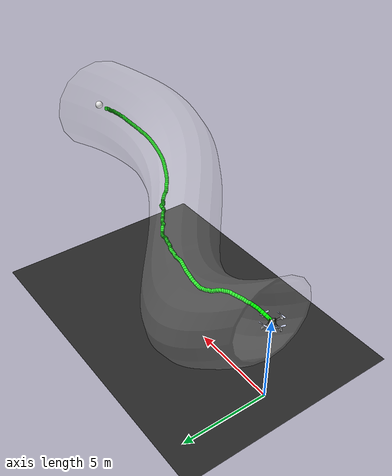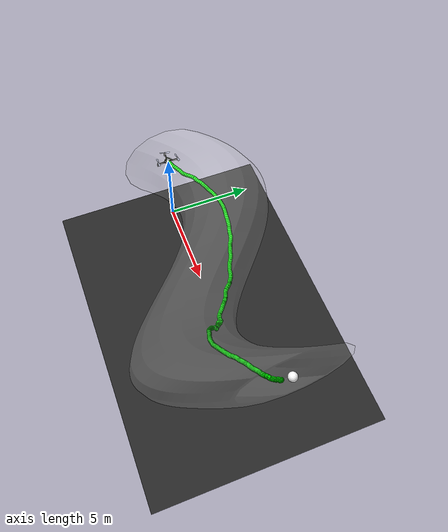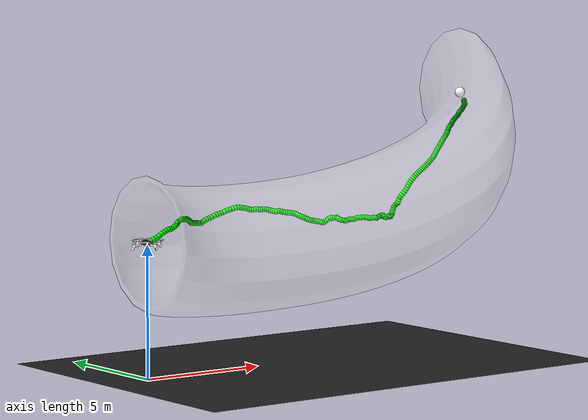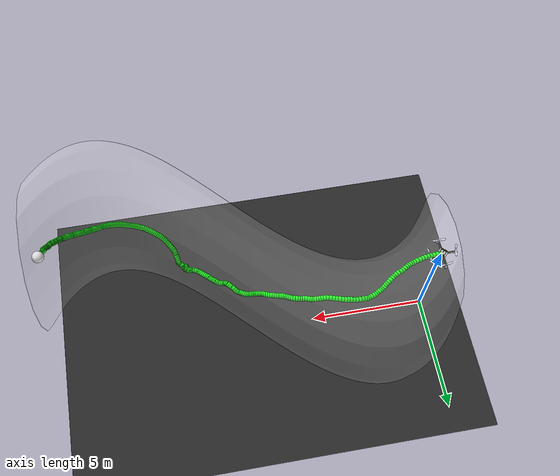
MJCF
<mujoco model="CF2 scene">
  <include file="cf2.xml" />

  <statistic center="0 0 0.1" extent="0.2" meansize=".05" />

  <visual>

    <rgba haze="0.15 0.25 0.35 0" />
    <global azimuth="-20" elevation="-20" ellipsoidinertia="true" />
    <map zfar="1000" />
  </visual>

  <asset>
    <mesh name="tunnel" file="tube_thick.obj" scale="1.0 1.0 1.0" />
    <texture type="skybox" builtin="gradient" rgb1="0.3 0.5 0.7" rgb2="0 0 0" width="512" height="3072" />

    <texture type="2d" name="groundplane" builtin="checker" mark="edge" rgb1="0.1 0.1 0.1" rgb2="0.2 0.2 0.2" markrgb="0.8 0.8 0.8" width="300" height="300" />

    <material name="groundplane" texture="groundplane" texuniform="true" texrepeat="5 5" reflectance="0.0" />
  </asset>

  <worldbody>
    <light diffuse="1 1 1" ambient="1 1 1" pos="0 0 100" dir="0 0 -1" directional="false" castshadow="false" />

    <geom name="floor" size="0 0 0.05" type="plane" material="groundplane" />
    <site name="x_axis" size="0.005" type="cylinder" fromto="0 0 0 1 0 0" rgba="1 0 0 1" />
    <site name="y_axis" size="0.005" type="cylinder" fromto="0 0 0 0 1 0" rgba="0 1 0 1" />
    <site name="z_axis" size="0.005" type="cylinder" fromto="0 0 0 0 0 1" rgba="0 0 1 1" />

    <site name="target" size="0.2" type="sphere" pos="15 0 10" rgba="1 1 1 1" />

    <camera name="cam_aux" pos="-3.429 -18.876 13.649" xyaxes="0.874 -0.486 -0.000 0.179 0.321 0.930" />
    <camera name="cam_traj_1" pos="-7.863 -0.826 23.122" xyaxes="0.020 -1.000 0.000 0.737 0.014 0.676" />
    <camera name="cam_traj_2" pos="7.041 -14.560 20.718" xyaxes="1.000 -0.031 -0.000 0.021 0.691 0.722" />
    <camera name="cam_traj_3" pos="-11.538 -0.602 8.690" xyaxes="0.046 -0.999 -0.000 0.161 0.007 0.987" />

    <body name="tunnel" pos="0.0 0.0 0.0" quat="1 0 0 0">
         <geom name="tunnel" type="mesh" mesh="tunnel" pos="-0.0 0.0 0.029" quat="1 0 0 0" rgba="1 1 1 0.05" />
    </body>

  <body name="trajectory_0" pos="0 0 0"><geom type="capsule" fromto="0.0012853595546936593 0.00047027934031070723 5.013283614304885 0.014320140048435539 0.0050479653705119655 5.031109401533253" size="0.1" rgba="0 1 0.0 1" /><geom type="capsule" fromto="0.014320140048435539 0.0050479653705119655 5.031109401533253 0.07044156455876667 0.019501336843949946 5.0655241527247155" size="0.1" rgba="0 1 0.0 1" /><geom type="capsule" fromto="0.07044156455876667 0.019501336843949946 5.0655241527247155 0.18905273629593777 0.043307146330075916 5.131095809090465" size="0.1" rgba="0 1 0.0 1" /><geom type="capsule" fromto="0.18905273629593777 0.043307146330075916 5.131095809090465 0.3324227043228154 0.06920457783752437 5.181594380862981" size="0.1" rgba="0 1 0.0 1" /><geom type="capsule" fromto="0.3324227043228154 0.06920457783752437 5.181594380862981 0.47441368721917954 0.09621750043521152 5.212262039523513" size="0.1" rgba="0 1 0.0 1" /><geom type="capsule" fromto="0.47441368721917954 0.09621750043521152 5.212262039523513 0.6234043451026282 0.13208580829039573 5.272291521315724" size="0.1" rgba="0 1 0.0 1" /><geom type="capsule" fromto="0.6234043451026282 0.13208580829039573 5.272291521315724 0.7649198268359869 0.17480595422133702 5.340476582608986" size="0.1" rgba="0 1 0.0 1" /><geom type="capsule" fromto="0.7649198268359869 0.17480595422133702 5.340476582608986 0.88765346686393 0.21682683458195892 5.3759221204298715" size="0.1" rgba="0 1 0.0 1" /><geom type="capsule" fromto="0.88765346686393 0.21682683458195892 5.3759221204298715 1.0145313326666103 0.26136879443507605 5.410701777998895" size="0.1" rgba="0 1 0.0 1" /><geom type="capsule" fromto="1.0145313326666103 0.26136879443507605 5.410701777998895 1.1489817576778785 0.307893260023797 5.449848350718764" size="0.1" rgba="0 1 0.0 1" /><geom type="capsule" fromto="1.1489817576778785 0.307893260023797 5.449848350718764 1.2699959795191598 0.3507298606047964 5.454170608363493" size="0.1" rgba="0 1 0.0 1" /><geom type="capsule" fromto="1.2699959795191598 0.3507298606047964 5.454170608363493 1.3861913397560763 0.3929128574111028 5.460892155032756" size="0.1" rgba="0 1 0.0 1" /><geom type="capsule" fromto="1.3861913397560763 0.3929128574111028 5.460892155032756 1.496504709875158 0.43988680346568854 5.509290303588491" size="0.1" rgba="0 1 0.0 1" /><geom type="capsule" fromto="1.496504709875158 0.43988680346568854 5.509290303588491 1.5863871900158981 0.49076761629786914 5.54265692409006" size="0.1" rgba="0 1 0.0 1" /><geom type="capsule" fromto="1.5863871900158981 0.49076761629786914 5.54265692409006 1.6739154376313652 0.5479120036146577 5.56276242009826" size="0.1" rgba="0 1 0.0 1" /><geom type="capsule" fromto="1.6739154376313652 0.5479120036146577 5.56276242009826 1.7805186417331205 0.6193964239873305 5.621937599389062" size="0.1" rgba="0 1 0.0 1" /><geom type="capsule" fromto="1.7805186417331205 0.6193964239873305 5.621937599389062 1.8824695019959323 0.69046450439656 5.654841771319888" size="0.1" rgba="0 1 0.0 1" /><geom type="capsule" fromto="1.8824695019959323 0.69046450439656 5.654841771319888 1.9891768180557539 0.7549733628861904 5.692622501821689" size="0.1" rgba="0 1 0.0 1" /><geom type="capsule" fromto="1.9891768180557539 0.7549733628861904 5.692622501821689 2.0991953454807293 0.809452806399863 5.72706469846556" size="0.1" rgba="0 1 0.0 1" /><geom type="capsule" fromto="2.0991953454807293 0.809452806399863 5.72706469846556 2.19557072496153 0.8542998385862836 5.7166319539052814" size="0.1" rgba="0 1 0.0 1" /><geom type="capsule" fromto="2.19557072496153 0.8542998385862836 5.7166319539052814 2.284068153373448 0.899142674487456 5.692419570251989" size="0.1" rgba="0 1 0.0 1" /><geom type="capsule" fromto="2.284068153373448 0.899142674487456 5.692419570251989 2.370657348108244 0.9540868594714961 5.690626315442958" size="0.1" rgba="0 1 0.0 1" /><geom type="capsule" fromto="2.370657348108244 0.9540868594714961 5.690626315442958 2.456012154077368 1.0153574630438378 5.697653286327407" size="0.1" rgba="0 1 0.0 1" /><geom type="capsule" fromto="2.456012154077368 1.0153574630438378 5.697653286327407 2.535971271448708 1.0717395450611225 5.67065806088946" size="0.1" rgba="0 1 0.0 1" /><geom type="capsule" fromto="2.535971271448708 1.0717395450611225 5.67065806088946 2.6119982420988785 1.1206358476504363 5.627738629939149" size="0.1" rgba="0 1 0.0 1" /><geom type="capsule" fromto="2.6119982420988785 1.1206358476504363 5.627738629939149 2.6821238170612145 1.1664084100460024 5.599244072378168" size="0.1" rgba="0 1 0.0 1" /><geom type="capsule" fromto="2.6821238170612145 1.1664084100460024 5.599244072378168 2.7446069942895623 1.213303572756715 5.574690287239894" size="0.1" rgba="0 1 0.0 1" /><geom type="capsule" fromto="2.7446069942895623 1.213303572756715 5.574690287239894 2.805426458777354 1.258425111268267 5.530160853954514" size="0.1" rgba="0 1 0.0 1" /><geom type="capsule" fromto="2.805426458777354 1.258425111268267 5.530160853954514 2.875116517463497 1.2989118657855734 5.487732728518108" size="0.1" rgba="0 1 0.0 1" /><geom type="capsule" fromto="2.875116517463497 1.2989118657855734 5.487732728518108 2.960894376224521 1.3373006998252057 5.483002474064678" size="0.1" rgba="0 1 0.0 1" /><geom type="capsule" fromto="2.960894376224521 1.3373006998252057 5.483002474064678 3.0449042755864646 1.37851595250864 5.4745120286261395" size="0.1" rgba="0 1 0.0 1" /><geom type="capsule" fromto="3.0449042755864646 1.37851595250864 5.4745120286261395 3.120082584939899 1.4216801619511124 5.449414533562812" size="0.1" rgba="0 1 0.0 1" /><geom type="capsule" fromto="3.120082584939899 1.4216801619511124 5.449414533562812 3.20341013654604 1.4612441636925664 5.450447531222437" size="0.1" rgba="0 1 0.0 1" /><geom type="capsule" fromto="3.20341013654604 1.4612441636925664 5.450447531222437 3.2947084475276265 1.4936551959511524 5.4492724039547396" size="0.1" rgba="0 1 0.0 1" /><geom type="capsule" fromto="3.2947084475276265 1.4936551959511524 5.4492724039547396 3.3822742405827397 1.5201087095277377 5.423797225708948" size="0.1" rgba="0 1 0.0 1" /><geom type="capsule" fromto="3.3822742405827397 1.5201087095277377 5.423797225708948 3.470784099156863 1.5375055205935335 5.41356299093114" size="0.1" rgba="0 1 0.0 1" /><geom type="capsule" fromto="3.470784099156863 1.5375055205935335 5.41356299093114 3.56814990879444 1.5512085311457642 5.443393186767296" size="0.1" rgba="0 1 0.0 1" /><geom type="capsule" fromto="3.56814990879444 1.5512085311457642 5.443393186767296 3.6775834262647304 1.5691004925615553 5.490088241913491" size="0.1" rgba="0 1 0.0 1" /><geom type="capsule" fromto="3.6775834262647304 1.5691004925615553 5.490088241913491 3.801989317787098 1.5856923280275335 5.542201777159132" size="0.1" rgba="0 1 0.0 1" /><geom type="capsule" fromto="3.801989317787098 1.5856923280275335 5.542201777159132 3.9225162708412125 1.5962026210966214 5.568362147914935" size="0.1" rgba="0 1 0.0 1" /><geom type="capsule" fromto="3.9225162708412125 1.5962026210966214 5.568362147914935 4.044583318094686 1.5955895784529424 5.606591332476915" size="0.1" rgba="0 1 0.0 1" /><geom type="capsule" fromto="4.044583318094686 1.5955895784529424 5.606591332476915 4.163129007900079 1.5879183724630648 5.658157381811024" size="0.1" rgba="0 1 0.0 1" /><geom type="capsule" fromto="4.163129007900079 1.5879183724630648 5.658157381811024 4.271758988233045 1.58176591624074 5.691498841716204" size="0.1" rgba="0 1 0.0 1" /><geom type="capsule" fromto="4.271758988233045 1.58176591624074 5.691498841716204 4.380829664274427 1.5767930701667434 5.716643391147755" size="0.1" rgba="0 1 0.0 1" /><geom type="capsule" fromto="4.380829664274427 1.5767930701667434 5.716643391147755 4.494560082521928 1.565985984624405 5.742263220341499" size="0.1" rgba="0 1 0.0 1" /><geom type="capsule" fromto="4.494560082521928 1.565985984624405 5.742263220341499 4.619213822912443 1.5473306982746111 5.790782277008472" size="0.1" rgba="0 1 0.0 1" /><geom type="capsule" fromto="4.619213822912443 1.5473306982746111 5.790782277008472 4.738611011023173 1.5273387315540075 5.828018673764754" size="0.1" rgba="0 1 0.0 1" /><geom type="capsule" fromto="4.738611011023173 1.5273387315540075 5.828018673764754 4.851270136628162 1.5056965778199667 5.850449418085789" size="0.1" rgba="0 1 0.0 1" /><geom type="capsule" fromto="4.851270136628162 1.5056965778199667 5.850449418085789 4.969541848413545 1.482268208265379 5.888261574270945" size="0.1" rgba="0 1 0.0 1" /><geom type="capsule" fromto="4.969541848413545 1.482268208265379 5.888261574270945 5.0829081081662615 1.461598447121547 5.912937967250372" size="0.1" rgba="0 1 0.0 1" /><geom type="capsule" fromto="5.0829081081662615 1.461598447121547 5.912937967250372 5.186085342463987 1.4461021557684763 5.9152725871975855" size="0.1" rgba="0 1 0.0 1" /><geom type="capsule" fromto="5.186085342463987 1.4461021557684763 5.9152725871975855 5.279478342949308 1.4357856291478943 5.906904547517201" size="0.1" rgba="0 1 0.0 1" /><geom type="capsule" fromto="5.279478342949308 1.4357856291478943 5.906904547517201 5.362744119114053 1.427218686011689 5.885731148842143" size="0.1" rgba="0 1 0.0 1" /><geom type="capsule" fromto="5.362744119114053 1.427218686011689 5.885731148842143 5.446045800653232 1.4177440293034551 5.870681132115739" size="0.1" rgba="0 1 0.0 1" /><geom type="capsule" fromto="5.446045800653232 1.4177440293034551 5.870681132115739 5.5323646622992895 1.4079496941899474 5.857753522480356" size="0.1" rgba="0 1 0.0 1" /><geom type="capsule" fromto="5.5323646622992895 1.4079496941899474 5.857753522480356 5.614782070405464 1.3963112406591327 5.824708961379177" size="0.1" rgba="0 1 0.0 1" /><geom type="capsule" fromto="5.614782070405464 1.3963112406591327 5.824708961379177 5.696491875005756 1.376808627845909 5.799635175745899" size="0.1" rgba="0 1 0.0 1" /><geom type="capsule" fromto="5.696491875005756 1.376808627845909 5.799635175745899 5.781757966387723 1.3484300303531394 5.799161119145286" size="0.1" rgba="0 1 0.0 1" /><geom type="capsule" fromto="5.781757966387723 1.3484300303531394 5.799161119145286 5.873093268552207 1.318396274491166 5.808656809504275" size="0.1" rgba="0 1 0.0 1" /><geom type="capsule" fromto="5.873093268552207 1.318396274491166 5.808656809504275 5.9642642624230096 1.2930149910297328 5.804247668266089" size="0.1" rgba="0 1 0.0 1" /><geom type="capsule" fromto="5.9642642624230096 1.2930149910297328 5.804247668266089 6.052620417322947 1.2756309370170462 5.790775556820336" size="0.1" rgba="0 1 0.0 1" /><geom type="capsule" fromto="6.052620417322947 1.2756309370170462 5.790775556820336 6.140606945463323 1.2624010040256732 5.7861392973188535" size="0.1" rgba="0 1 0.0 1" /><geom type="capsule" fromto="6.140606945463323 1.2624010040256732 5.7861392973188535 6.229532547215699 1.2461091636758315 5.791720625196338" size="0.1" rgba="0 1 0.0 1" /><geom type="capsule" fromto="6.229532547215699 1.2461091636758315 5.791720625196338 6.315795874856431 1.2245306352662069 5.7887029148924" size="0.1" rgba="0 1 0.0 1" /><geom type="capsule" fromto="6.315795874856431 1.2245306352662069 5.7887029148924 6.394386700334637 1.1951616989395575 5.764748525817891" size="0.1" rgba="0 1 0.0 1" /><geom type="capsule" fromto="6.394386700334637 1.1951616989395575 5.764748525817891 6.468185499540562 1.1565288161722624 5.738642869998028" size="0.1" rgba="0 1 0.0 1" /><geom type="capsule" fromto="6.468185499540562 1.1565288161722624 5.738642869998028 6.537366709105285 1.1125837608168043 5.722247315473538" size="0.1" rgba="0 1 0.0 1" /><geom type="capsule" fromto="6.537366709105285 1.1125837608168043 5.722247315473538 6.602445762853487 1.0704577591380553 5.701204291201918" size="0.1" rgba="0 1 0.0 1" /><geom type="capsule" fromto="6.602445762853487 1.0704577591380553 5.701204291201918 6.672901279435501 1.035328606119307 5.693577357736813" size="0.1" rgba="0 1 0.0 1" /><geom type="capsule" fromto="6.672901279435501 1.035328606119307 5.693577357736813 6.743049162329453 1.0113718380963337 5.707833859998446" size="0.1" rgba="0 1 0.0 1" /><geom type="capsule" fromto="6.743049162329453 1.0113718380963337 5.707833859998446 6.802137263746081 0.9939671322073246 5.705083944797465" size="0.1" rgba="0 1 0.0 1" /><geom type="capsule" fromto="6.802137263746081 0.9939671322073246 5.705083944797465 6.859378816504023 0.9755010707516942 5.686566203489542" size="0.1" rgba="0 1 0.0 1" /><geom type="capsule" fromto="6.859378816504023 0.9755010707516942 5.686566203489542 6.924111439992232 0.9523843735810097 5.666618744623862" size="0.1" rgba="0 1 0.0 1" /><geom type="capsule" fromto="6.924111439992232 0.9523843735810097 5.666618744623862 6.998490691722804 0.9259877574097988 5.650974262630583" size="0.1" rgba="0 1 0.0 1" /><geom type="capsule" fromto="6.998490691722804 0.9259877574097988 5.650974262630583 7.077191655934562 0.9000486765660425 5.640646558667137" size="0.1" rgba="0 1 0.0 1" /><geom type="capsule" fromto="7.077191655934562 0.9000486765660425 5.640646558667137 7.156230058276215 0.8746365041832206 5.636503142195299" size="0.1" rgba="0 1 0.0 1" /><geom type="capsule" fromto="7.156230058276215 0.8746365041832206 5.636503142195299 7.233759279485944 0.8484313641309236 5.620707647836825" size="0.1" rgba="0 1 0.0 1" /><geom type="capsule" fromto="7.233759279485944 0.8484313641309236 5.620707647836825 7.308967672074701 0.8177552203705137 5.6002400550741624" size="0.1" rgba="0 1 0.0 1" /><geom type="capsule" fromto="7.308967672074701 0.8177552203705137 5.6002400550741624 7.379265313657744 0.7781111986519614 5.588206228561372" size="0.1" rgba="0 1 0.0 1" /><geom type="capsule" fromto="7.379265313657744 0.7781111986519614 5.588206228561372 7.440364285106929 0.7363381017432487 5.549215169609405" size="0.1" rgba="0 1 0.0 1" /><geom type="capsule" fromto="7.440364285106929 0.7363381017432487 5.549215169609405 7.498065635196446 0.6999212032030055 5.5095927734429" size="0.1" rgba="0 1 0.0 1" /><geom type="capsule" fromto="7.498065635196446 0.6999212032030055 5.5095927734429 7.55664341956195 0.670193672701184 5.481850550214689" size="0.1" rgba="0 1 0.0 1" /><geom type="capsule" fromto="7.55664341956195 0.670193672701184 5.481850550214689 7.616415878000519 0.6478791003377449 5.4543222846224895" size="0.1" rgba="0 1 0.0 1" /><geom type="capsule" fromto="7.616415878000519 0.6478791003377449 5.4543222846224895 7.676579106463314 0.6304967628083307 5.432906892450077" size="0.1" rgba="0 1 0.0 1" /><geom type="capsule" fromto="7.676579106463314 0.6304967628083307 5.432906892450077 7.734381328063129 0.6109344949663152 5.408773166597203" size="0.1" rgba="0 1 0.0 1" /><geom type="capsule" fromto="7.734381328063129 0.6109344949663152 5.408773166597203 7.790544661794439 0.5885054561551705 5.376495069472317" size="0.1" rgba="0 1 0.0 1" /><geom type="capsule" fromto="7.790544661794439 0.5885054561551705 5.376495069472317 7.850345156048979 0.5692751443498798 5.348946323741599" size="0.1" rgba="0 1 0.0 1" /><geom type="capsule" fromto="7.850345156048979 0.5692751443498798 5.348946323741599 7.915130384366121 0.5577862534341884 5.328844901971434" size="0.1" rgba="0 1 0.0 1" /><geom type="capsule" fromto="7.915130384366121 0.5577862534341884 5.328844901971434 7.980323348645969 0.5487797819940239 5.307302073198862" size="0.1" rgba="0 1 0.0 1" /><geom type="capsule" fromto="7.980323348645969 0.5487797819940239 5.307302073198862 8.044749273788982 0.5345895005039615 5.295546109400312" size="0.1" rgba="0 1 0.0 1" /><geom type="capsule" fromto="8.044749273788982 0.5345895005039615 5.295546109400312 8.109992676665586 0.5122421637091074 5.286187774673868" size="0.1" rgba="0 1 0.0 1" /><geom type="capsule" fromto="8.109992676665586 0.5122421637091074 5.286187774673868 8.174264236118264 0.48261037761581105 5.266456213759932" size="0.1" rgba="0 1 0.0 1" /><geom type="capsule" fromto="8.174264236118264 0.48261037761581105 5.266456213759932 8.233673521774064 0.44711070234808603 5.2553972562956766" size="0.1" rgba="0 1 0.0 1" /><geom type="capsule" fromto="8.233673521774064 0.44711070234808603 5.2553972562956766 8.28567168465211 0.4090693332553852 5.248031743431805" size="0.1" rgba="0 1 0.0 1" /><geom type="capsule" fromto="8.28567168465211 0.4090693332553852 5.248031743431805 8.334630143932445 0.37365101491735114 5.225058156529853" size="0.1" rgba="0 1 0.0 1" /><geom type="capsule" fromto="8.334630143932445 0.37365101491735114 5.225058156529853 8.388160454938713 0.344510522402945 5.215526971270021" size="0.1" rgba="0 1 0.0 1" /><geom type="capsule" fromto="8.388160454938713 0.344510522402945 5.215526971270021 8.445426996420078 0.3139420519204106 5.234418653328291" size="0.1" rgba="0 1 0.0 1" /><geom type="capsule" fromto="8.445426996420078 0.3139420519204106 5.234418653328291 8.505780352313792 0.26849517109985366 5.287083339313003" size="0.1" rgba="0 1 0.0 1" /><geom type="capsule" fromto="8.505780352313792 0.26849517109985366 5.287083339313003 8.571009055444698 0.21088911822484885 5.359783714759391" size="0.1" rgba="0 1 0.0 1" /><geom type="capsule" fromto="8.571009055444698 0.21088911822484885 5.359783714759391 8.631635779562975 0.15482938815632258 5.393020057118192" size="0.1" rgba="0 1 0.0 1" /><geom type="capsule" fromto="8.631635779562975 0.15482938815632258 5.393020057118192 8.68277365065277 0.10310375102830459 5.384945591175701" size="0.1" rgba="0 1 0.0 1" /><geom type="capsule" fromto="8.68277365065277 0.10310375102830459 5.384945591175701 8.728738840399513 0.052741182526529026 5.399091776944285" size="0.1" rgba="0 1 0.0 1" /><geom type="capsule" fromto="8.728738840399513 0.052741182526529026 5.399091776944285 8.773550906596862 0.005922928369021682 5.411327771848506" size="0.1" rgba="0 1 0.0 1" /><geom type="capsule" fromto="8.773550906596862 0.005922928369021682 5.411327771848506 8.818449942264591 -0.03434345301716425 5.382544946797536" size="0.1" rgba="0 1 0.0 1" /><geom type="capsule" fromto="8.818449942264591 -0.03434345301716425 5.382544946797536 8.86730421495154 -0.06558192446864468 5.343681081420352" size="0.1" rgba="0 1 0.0 1" /><geom type="capsule" fromto="8.86730421495154 -0.06558192446864468 5.343681081420352 8.918674534426465 -0.08708927749381357 5.317318079188049" size="0.1" rgba="0 1 0.0 1" /><geom type="capsule" fromto="8.918674534426465 -0.08708927749381357 5.317318079188049 8.972167064106806 -0.10506299449518691 5.306807927322927" size="0.1" rgba="0 1 0.0 1" /><geom type="capsule" fromto="8.972167064106806 -0.10506299449518691 5.306807927322927 9.030105713796734 -0.12586646693285822 5.299979275022605" size="0.1" rgba="0 1 0.0 1" /><geom type="capsule" fromto="9.030105713796734 -0.12586646693285822 5.299979275022605 9.087562403290843 -0.15107906520376568 5.281132381173714" size="0.1" rgba="0 1 0.0 1" /><geom type="capsule" fromto="9.087562403290843 -0.15107906520376568 5.281132381173714 9.141801376190966 -0.1809152094599241 5.285600443989492" size="0.1" rgba="0 1 0.0 1" /><geom type="capsule" fromto="9.141801376190966 -0.1809152094599241 5.285600443989492 9.19210301332263 -0.21088552718501985 5.314642422301078" size="0.1" rgba="0 1 0.0 1" /><geom type="capsule" fromto="9.19210301332263 -0.21088552718501985 5.314642422301078 9.238100718220432 -0.2423984919200437 5.334612443486429" size="0.1" rgba="0 1 0.0 1" /><geom type="capsule" fromto="9.238100718220432 -0.2423984919200437 5.334612443486429 9.281433295056724 -0.2778844802746072 5.331822601432883" size="0.1" rgba="0 1 0.0 1" /><geom type="capsule" fromto="9.281433295056724 -0.2778844802746072 5.331822601432883 9.325660239464234 -0.31456651594745644 5.329994840819013" size="0.1" rgba="0 1 0.0 1" /><geom type="capsule" fromto="9.325660239464234 -0.31456651594745644 5.329994840819013 9.37451257714785 -0.35017425578530986 5.339591446131251" size="0.1" rgba="0 1 0.0 1" /><geom type="capsule" fromto="9.37451257714785 -0.35017425578530986 5.339591446131251 9.425886285415984 -0.38746850139389183 5.35971116129518" size="0.1" rgba="0 1 0.0 1" /><geom type="capsule" fromto="9.425886285415984 -0.38746850139389183 5.35971116129518 9.475935856364426 -0.42765019428043205 5.392452675120094" size="0.1" rgba="0 1 0.0 1" /><geom type="capsule" fromto="9.475935856364426 -0.42765019428043205 5.392452675120094 9.524524767017672 -0.46861524237794816 5.3999181666144045" size="0.1" rgba="0 1 0.0 1" /><geom type="capsule" fromto="9.524524767017672 -0.46861524237794816 5.3999181666144045 9.57847688735663 -0.5097862457742307 5.401360747113876" size="0.1" rgba="0 1 0.0 1" /><geom type="capsule" fromto="9.57847688735663 -0.5097862457742307 5.401360747113876 9.636285381009042 -0.5516544958526529 5.409222325704218" size="0.1" rgba="0 1 0.0 1" /><geom type="capsule" fromto="9.636285381009042 -0.5516544958526529 5.409222325704218 9.68764385038216 -0.5965629460297038 5.412313442666814" size="0.1" rgba="0 1 0.0 1" /><geom type="capsule" fromto="9.68764385038216 -0.5965629460297038 5.412313442666814 9.731998720266956 -0.6419819360086944 5.4044975417746155" size="0.1" rgba="0 1 0.0 1" /><geom type="capsule" fromto="9.731998720266956 -0.6419819360086944 5.4044975417746155 9.773671570449633 -0.6845914435669327 5.39156839246748" size="0.1" rgba="0 1 0.0 1" /><geom type="capsule" fromto="9.773671570449633 -0.6845914435669327 5.39156839246748 9.816101691045711 -0.7247806519879423 5.380152018510966" size="0.1" rgba="0 1 0.0 1" /><geom type="capsule" fromto="9.816101691045711 -0.7247806519879423 5.380152018510966 9.862156155503383 -0.7628078152277482 5.372362030841846" size="0.1" rgba="0 1 0.0 1" /><geom type="capsule" fromto="9.862156155503383 -0.7628078152277482 5.372362030841846 9.916425286889766 -0.7948064137044099 5.390893813654234" size="0.1" rgba="0 1 0.0 1" /><geom type="capsule" fromto="9.916425286889766 -0.7948064137044099 5.390893813654234 9.974205646884974 -0.8200819669626674 5.403623158419371" size="0.1" rgba="0 1 0.0 1" /><geom type="capsule" fromto="9.974205646884974 -0.8200819669626674 5.403623158419371 10.028435309421875 -0.8392090071759968 5.389520395699723" size="0.1" rgba="0 1 0.0 1" /><geom type="capsule" fromto="10.028435309421875 -0.8392090071759968 5.389520395699723 10.079888044106411 -0.8492539940378828 5.374279207524094" size="0.1" rgba="0 1 0.0 1" /><geom type="capsule" fromto="10.079888044106411 -0.8492539940378828 5.374279207524094 10.13490163716438 -0.848264637385224 5.398146430249362" size="0.1" rgba="0 1 0.0 1" /><geom type="capsule" fromto="10.13490163716438 -0.848264637385224 5.398146430249362 10.188920567755021 -0.8438953579549102 5.432617687489014" size="0.1" rgba="0 1 0.0 1" /><geom type="capsule" fromto="10.188920567755021 -0.8438953579549102 5.432617687489014 10.233435465469455 -0.847020391686348 5.444953763939986" size="0.1" rgba="0 1 0.0 1" /><geom type="capsule" fromto="10.233435465469455 -0.847020391686348 5.444953763939986 10.27113306076534 -0.8627119708105564 5.462424817155609" size="0.1" rgba="0 1 0.0 1" /><geom type="capsule" fromto="10.27113306076534 -0.8627119708105564 5.462424817155609 10.302875370217626 -0.886108520017998 5.4614018511576985" size="0.1" rgba="0 1 0.0 1" /><geom type="capsule" fromto="10.302875370217626 -0.886108520017998 5.4614018511576985 10.325981703243649 -0.9112948728019018 5.433414290448277" size="0.1" rgba="0 1 0.0 1" /><geom type="capsule" fromto="10.325981703243649 -0.9112948728019018 5.433414290448277 10.33610959294911 -0.9326222000168041 5.428022214457907" size="0.1" rgba="0 1 0.0 1" /><geom type="capsule" fromto="10.33610959294911 -0.9326222000168041 5.428022214457907 10.331978811607037 -0.9467840949045458 5.4407136992879215" size="0.1" rgba="0 1 0.0 1" /><geom type="capsule" fromto="10.331978811607037 -0.9467840949045458 5.4407136992879215 10.318148053727048 -0.9554674071430778 5.459704820867776" size="0.1" rgba="0 1 0.0 1" /><geom type="capsule" fromto="10.318148053727048 -0.9554674071430778 5.459704820867776 10.300508771310868 -0.9627617395322445 5.464765368946335" size="0.1" rgba="0 1 0.0 1" /><geom type="capsule" fromto="10.300508771310868 -0.9627617395322445 5.464765368946335 10.285125581213215 -0.9721836723730317 5.469418673944786" size="0.1" rgba="0 1 0.0 1" /><geom type="capsule" fromto="10.285125581213215 -0.9721836723730317 5.469418673944786 10.279859331268021 -0.9858191245886099 5.484570088238192" size="0.1" rgba="0 1 0.0 1" /><geom type="capsule" fromto="10.279859331268021 -0.9858191245886099 5.484570088238192 10.283688319850542 -1.003030996792487 5.470477952169843" size="0.1" rgba="0 1 0.0 1" /><geom type="capsule" fromto="10.283688319850542 -1.003030996792487 5.470477952169843 10.29554303528042 -1.0202177163960942 5.449721803538948" size="0.1" rgba="0 1 0.0 1" /><geom type="capsule" fromto="10.29554303528042 -1.0202177163960942 5.449721803538948 10.315104219386876 -1.0316920732341097 5.436973715231139" size="0.1" rgba="0 1 0.0 1" /><geom type="capsule" fromto="10.315104219386876 -1.0316920732341097 5.436973715231139 10.342360972145269 -1.0378173459961593 5.417471896067149" size="0.1" rgba="0 1 0.0 1" /><geom type="capsule" fromto="10.342360972145269 -1.0378173459961593 5.417471896067149 10.37443164511636 -1.0440138667100363 5.3964146840502805" size="0.1" rgba="0 1 0.0 1" /><geom type="capsule" fromto="10.37443164511636 -1.0440138667100363 5.3964146840502805 10.405327234880849 -1.055821368143249 5.397246249416648" size="0.1" rgba="0 1 0.0 1" /><geom type="capsule" fromto="10.405327234880849 -1.055821368143249 5.397246249416648 10.433682982093124 -1.082024518388896 5.438348753498598" size="0.1" rgba="0 1 0.0 1" /><geom type="capsule" fromto="10.433682982093124 -1.082024518388896 5.438348753498598 10.459753436429738 -1.117313292387249 5.4572567091605455" size="0.1" rgba="0 1 0.0 1" /><geom type="capsule" fromto="10.459753436429738 -1.117313292387249 5.4572567091605455 10.484399617249094 -1.1509911225282963 5.423758501422473" size="0.1" rgba="0 1 0.0 1" /><geom type="capsule" fromto="10.484399617249094 -1.1509911225282963 5.423758501422473 10.515487158689742 -1.1734599095537577 5.432737299790488" size="0.1" rgba="0 1 0.0 1" /><geom type="capsule" fromto="10.515487158689742 -1.1734599095537577 5.432737299790488 10.548708559872102 -1.1838602082093193 5.478476809336593" size="0.1" rgba="0 1 0.0 1" /><geom type="capsule" fromto="10.548708559872102 -1.1838602082093193 5.478476809336593 10.566457590780027 -1.1914874825221602 5.524774033695753" size="0.1" rgba="0 1 0.0 1" /><geom type="capsule" fromto="10.566457590780027 -1.1914874825221602 5.524774033695753 10.568222924087573 -1.198641348948068 5.567300559603926" size="0.1" rgba="0 1 0.0 1" /><geom type="capsule" fromto="10.568222924087573 -1.198641348948068 5.567300559603926 10.567053823462967 -1.2135459326305913 5.627399994597955" size="0.1" rgba="0 1 0.0 1" /><geom type="capsule" fromto="10.567053823462967 -1.2135459326305913 5.627399994597955 10.572045895737078 -1.2442112079835956 5.720845202041701" size="0.1" rgba="0 1 0.0 1" /><geom type="capsule" fromto="10.572045895737078 -1.2442112079835956 5.720845202041701 10.583140773574815 -1.283028847850981 5.805306783134602" size="0.1" rgba="0 1 0.0 1" /><geom type="capsule" fromto="10.583140773574815 -1.283028847850981 5.805306783134602 10.59821023542968 -1.3243713300692044 5.861743504262327" size="0.1" rgba="0 1 0.0 1" /><geom type="capsule" fromto="10.59821023542968 -1.3243713300692044 5.861743504262327 10.61058310076639 -1.3702670873403722 5.918438852582884" size="0.1" rgba="0 1 0.0 1" /><geom type="capsule" fromto="10.61058310076639 -1.3702670873403722 5.918438852582884 10.618938789195935 -1.4144116174122836 5.935992898033661" size="0.1" rgba="0 1 0.0 1" /><geom type="capsule" fromto="10.618938789195935 -1.4144116174122836 5.935992898033661 10.630872881698664 -1.4487044912672313 5.960610928937348" size="0.1" rgba="0 1 0.0 1" /><geom type="capsule" fromto="10.630872881698664 -1.4487044912672313 5.960610928937348 10.648222998645654 -1.4723094072141878 6.053439079285758" size="0.1" rgba="0 1 0.0 1" /><geom type="capsule" fromto="10.648222998645654 -1.4723094072141878 6.053439079285758 10.667807958596491 -1.4926317122261816 6.140300648683695" size="0.1" rgba="0 1 0.0 1" /><geom type="capsule" fromto="10.667807958596491 -1.4926317122261816 6.140300648683695 10.691995978171274 -1.514640940104301 6.189159200435891" size="0.1" rgba="0 1 0.0 1" /><geom type="capsule" fromto="10.691995978171274 -1.514640940104301 6.189159200435891 10.727506484684662 -1.5492202886632869 6.2506428010707715" size="0.1" rgba="0 1 0.0 1" /><geom type="capsule" fromto="10.727506484684662 -1.5492202886632869 6.2506428010707715 10.773618932682755 -1.5937798996782746 6.335072268733134" size="0.1" rgba="0 1 0.0 1" /><geom type="capsule" fromto="10.773618932682755 -1.5937798996782746 6.335072268733134 10.821638834355543 -1.6358674634381911 6.413881645976345" size="0.1" rgba="0 1 0.0 1" /><geom type="capsule" fromto="10.821638834355543 -1.6358674634381911 6.413881645976345 10.8648911122684 -1.6718679545398454 6.500227225275614" size="0.1" rgba="0 1 0.0 1" /><geom type="capsule" fromto="10.8648911122684 -1.6718679545398454 6.500227225275614 10.903604699578388 -1.7000472774560726 6.590020224792977" size="0.1" rgba="0 1 0.0 1" /><geom type="capsule" fromto="10.903604699578388 -1.7000472774560726 6.590020224792977 10.943591561285926 -1.7208575952533558 6.667800282781753" size="0.1" rgba="0 1 0.0 1" /><geom type="capsule" fromto="10.943591561285926 -1.7208575952533558 6.667800282781753 10.988089265072919 -1.7392863784304888 6.74517753382001" size="0.1" rgba="0 1 0.0 1" /><geom type="capsule" fromto="10.988089265072919 -1.7392863784304888 6.74517753382001 11.036188053489438 -1.7584937354044639 6.823790880845725" size="0.1" rgba="0 1 0.0 1" /><geom type="capsule" fromto="11.036188053489438 -1.7584937354044639 6.823790880845725 11.087122001662577 -1.7759064209011322 6.893368313684309" size="0.1" rgba="0 1 0.0 1" /><geom type="capsule" fromto="11.087122001662577 -1.7759064209011322 6.893368313684309 11.14160816870934 -1.79085249655826 6.954452421225911" size="0.1" rgba="0 1 0.0 1" /><geom type="capsule" fromto="11.14160816870934 -1.79085249655826 6.954452421225911 11.198335799488914 -1.806961727411132 7.011705095061679" size="0.1" rgba="0 1 0.0 1" /><geom type="capsule" fromto="11.198335799488914 -1.806961727411132 7.011705095061679 11.254187290849849 -1.8275466726761722 7.071786350224492" size="0.1" rgba="0 1 0.0 1" /><geom type="capsule" fromto="11.254187290849849 -1.8275466726761722 7.071786350224492 11.30816502849907 -1.849294333466121 7.124937526866497" size="0.1" rgba="0 1 0.0 1" /><geom type="capsule" fromto="11.30816502849907 -1.849294333466121 7.124937526866497 11.363031926790603 -1.868125035173085 7.175590393927348" size="0.1" rgba="0 1 0.0 1" /><geom type="capsule" fromto="11.363031926790603 -1.868125035173085 7.175590393927348 11.418518152083752 -1.883884650386851 7.223625819966235" size="0.1" rgba="0 1 0.0 1" /><geom type="capsule" fromto="11.418518152083752 -1.883884650386851 7.223625819966235 11.472726448717955 -1.8991032259915597 7.268122961745168" size="0.1" rgba="0 1 0.0 1" /><geom type="capsule" fromto="11.472726448717955 -1.8991032259915597 7.268122961745168 11.525209919886786 -1.9153999443620766 7.315593143894397" size="0.1" rgba="0 1 0.0 1" /><geom type="capsule" fromto="11.525209919886786 -1.9153999443620766 7.315593143894397 11.577176607494229 -1.9295893626086627 7.360660151583023" size="0.1" rgba="0 1 0.0 1" /><geom type="capsule" fromto="11.577176607494229 -1.9295893626086627 7.360660151583023 11.63145332132855 -1.9388103647623973 7.405769046643539" size="0.1" rgba="0 1 0.0 1" /><geom type="capsule" fromto="11.63145332132855 -1.9388103647623973 7.405769046643539 11.687940151810489 -1.9435403753808014 7.448598870296069" size="0.1" rgba="0 1 0.0 1" /><geom type="capsule" fromto="11.687940151810489 -1.9435403753808014 7.448598870296069 11.745425308940668 -1.9452448387025831 7.494565693740949" size="0.1" rgba="0 1 0.0 1" /><geom type="capsule" fromto="11.745425308940668 -1.9452448387025831 7.494565693740949 11.801634650455057 -1.9460104625416583 7.54438644191205" size="0.1" rgba="0 1 0.0 1" /><geom type="capsule" fromto="11.801634650455057 -1.9460104625416583 7.54438644191205 11.855690329894887 -1.9463700664646406 7.5896913119405" size="0.1" rgba="0 1 0.0 1" /><geom type="capsule" fromto="11.855690329894887 -1.9463700664646406 7.5896913119405 11.909058436395963 -1.9451004804070544 7.630887826581378" size="0.1" rgba="0 1 0.0 1" /><geom type="capsule" fromto="11.909058436395963 -1.9451004804070544 7.630887826581378 11.96402492892247 -1.940988055244171 7.679268153246929" size="0.1" rgba="0 1 0.0 1" /><geom type="capsule" fromto="11.96402492892247 -1.940988055244171 7.679268153246929 12.02015404760507 -1.9329139236871544 7.734403160505767" size="0.1" rgba="0 1 0.0 1" /><geom type="capsule" fromto="12.02015404760507 -1.9329139236871544 7.734403160505767 12.075471536614737 -1.9207192136781828 7.790575053612385" size="0.1" rgba="0 1 0.0 1" /><geom type="capsule" fromto="12.075471536614737 -1.9207192136781828 7.790575053612385 12.12982626868106 -1.9060354409854954 7.849346166035839" size="0.1" rgba="0 1 0.0 1" /><geom type="capsule" fromto="12.12982626868106 -1.9060354409854954 7.849346166035839 12.183169278420943 -1.8908267813045818 7.90716773715508" size="0.1" rgba="0 1 0.0 1" /><geom type="capsule" fromto="12.183169278420943 -1.8908267813045818 7.90716773715508 12.236360556305211 -1.8755778894376725 7.963719988058351" size="0.1" rgba="0 1 0.0 1" /><geom type="capsule" fromto="12.236360556305211 -1.8755778894376725 7.963719988058351 12.290156673275451 -1.8612629535653127 8.018025086542306" size="0.1" rgba="0 1 0.0 1" /><geom type="capsule" fromto="12.290156673275451 -1.8612629535653127 8.018025086542306 12.343371951319787 -1.8486417411342209 8.067478952663805" size="0.1" rgba="0 1 0.0 1" /><geom type="capsule" fromto="12.343371951319787 -1.8486417411342209 8.067478952663805 12.395678761848014 -1.8355714869279216 8.113980601092512" size="0.1" rgba="0 1 0.0 1" /><geom type="capsule" fromto="12.395678761848014 -1.8355714869279216 8.113980601092512 12.448137947362207 -1.8196415477655787 8.160324593093167" size="0.1" rgba="0 1 0.0 1" /><geom type="capsule" fromto="12.448137947362207 -1.8196415477655787 8.160324593093167 12.501412216476991 -1.8005824612392443 8.207516043027274" size="0.1" rgba="0 1 0.0 1" /><geom type="capsule" fromto="12.501412216476991 -1.8005824612392443 8.207516043027274 12.554364451656424 -1.780307383402747 8.255777146461405" size="0.1" rgba="0 1 0.0 1" /><geom type="capsule" fromto="12.554364451656424 -1.780307383402747 8.255777146461405 12.605323774786665 -1.7608369511989406 8.300071466874037" size="0.1" rgba="0 1 0.0 1" /><geom type="capsule" fromto="12.605323774786665 -1.7608369511989406 8.300071466874037 12.65520115601089 -1.7417770430015072 8.342181400084463" size="0.1" rgba="0 1 0.0 1" /><geom type="capsule" fromto="12.65520115601089 -1.7417770430015072 8.342181400084463 12.704647296262184 -1.7224463720537921 8.383163622500176" size="0.1" rgba="0 1 0.0 1" /><geom type="capsule" fromto="12.704647296262184 -1.7224463720537921 8.383163622500176 12.752280748708197 -1.7037875052878362 8.420557349111313" size="0.1" rgba="0 1 0.0 1" /><geom type="capsule" fromto="12.752280748708197 -1.7037875052878362 8.420557349111313 12.797483642003263 -1.685142216678506 8.451498098745867" size="0.1" rgba="0 1 0.0 1" /><geom type="capsule" fromto="12.797483642003263 -1.685142216678506 8.451498098745867 12.84185759220134 -1.6654822852004563 8.480695224629505" size="0.1" rgba="0 1 0.0 1" /><geom type="capsule" fromto="12.84185759220134 -1.6654822852004563 8.480695224629505 12.886812635221323 -1.6457873865795762 8.513992890412815" size="0.1" rgba="0 1 0.0 1" /><geom type="capsule" fromto="12.886812635221323 -1.6457873865795762 8.513992890412815 12.930914479742981 -1.6249390133654782 8.545393967583465" size="0.1" rgba="0 1 0.0 1" /><geom type="capsule" fromto="12.930914479742981 -1.6249390133654782 8.545393967583465 12.972396449301906 -1.6008162575732725 8.576244816729258" size="0.1" rgba="0 1 0.0 1" /><geom type="capsule" fromto="12.972396449301906 -1.6008162575732725 8.576244816729258 13.01077815901 -1.5733866735029467 8.604904058335325" size="0.1" rgba="0 1 0.0 1" /><geom type="capsule" fromto="13.01077815901 -1.5733866735029467 8.604904058335325 13.046907524983029 -1.5454823992280904 8.631173426849077" size="0.1" rgba="0 1 0.0 1" /><geom type="capsule" fromto="13.046907524983029 -1.5454823992280904 8.631173426849077 13.083563926138373 -1.5190286452434394 8.6639255697386" size="0.1" rgba="0 1 0.0 1" /><geom type="capsule" fromto="13.083563926138373 -1.5190286452434394 8.6639255697386 13.120774627423922 -1.4940821273434892 8.69735774318523" size="0.1" rgba="0 1 0.0 1" /><geom type="capsule" fromto="13.120774627423922 -1.4940821273434892 8.69735774318523 13.157789926623096 -1.4708362237443717 8.724883940403185" size="0.1" rgba="0 1 0.0 1" /><geom type="capsule" fromto="13.157789926623096 -1.4708362237443717 8.724883940403185 13.195554523086235 -1.450010499207155 8.75562749096384" size="0.1" rgba="0 1 0.0 1" /><geom type="capsule" fromto="13.195554523086235 -1.450010499207155 8.75562749096384 13.233487864880917 -1.4318519854974447 8.786403567048845" size="0.1" rgba="0 1 0.0 1" /><geom type="capsule" fromto="13.233487864880917 -1.4318519854974447 8.786403567048845 13.27132977939725 -1.4140173123091944 8.808509299055878" size="0.1" rgba="0 1 0.0 1" /><geom type="capsule" fromto="13.27132977939725 -1.4140173123091944 8.808509299055878 13.30877515968053 -1.3954716067866504 8.824834049991788" size="0.1" rgba="0 1 0.0 1" /><geom type="capsule" fromto="13.30877515968053 -1.3954716067866504 8.824834049991788 13.34517637248293 -1.3780310678082235 8.842770947800348" size="0.1" rgba="0 1 0.0 1" /><geom type="capsule" fromto="13.34517637248293 -1.3780310678082235 8.842770947800348 13.380419730789978 -1.3615273232001297 8.861492587333215" size="0.1" rgba="0 1 0.0 1" /><geom type="capsule" fromto="13.380419730789978 -1.3615273232001297 8.861492587333215 13.415607680093993 -1.3430648300957178 8.886161620162959" size="0.1" rgba="0 1 0.0 1" /><geom type="capsule" fromto="13.415607680093993 -1.3430648300957178 8.886161620162959 13.450919112872045 -1.3228283714215223 8.912966742672177" size="0.1" rgba="0 1 0.0 1" /><geom type="capsule" fromto="13.450919112872045 -1.3228283714215223 8.912966742672177 13.485213967112298 -1.3020293275946753 8.938560078447933" size="0.1" rgba="0 1 0.0 1" /><geom type="capsule" fromto="13.485213967112298 -1.3020293275946753 8.938560078447933 13.518719965955006 -1.2813405940332674 8.96337411756093" size="0.1" rgba="0 1 0.0 1" /><geom type="capsule" fromto="13.518719965955006 -1.2813405940332674 8.96337411756093 13.551656125269258 -1.262101257523481 8.980279719434268" size="0.1" rgba="0 1 0.0 1" /><geom type="capsule" fromto="13.551656125269258 -1.262101257523481 8.980279719434268 13.584037653865343 -1.2451027847856906 8.994381358864047" size="0.1" rgba="0 1 0.0 1" /><geom type="capsule" fromto="13.584037653865343 -1.2451027847856906 8.994381358864047 13.61689034473023 -1.2294374969987536 9.012831087770454" size="0.1" rgba="0 1 0.0 1" /><geom type="capsule" fromto="13.61689034473023 -1.2294374969987536 9.012831087770454 13.650394964971696 -1.2135349568473908 9.032484140422481" size="0.1" rgba="0 1 0.0 1" /><geom type="capsule" fromto="13.650394964971696 -1.2135349568473908 9.032484140422481 13.684035669368773 -1.1981915807610506 9.048803704262395" size="0.1" rgba="0 1 0.0 1" /><geom type="capsule" fromto="13.684035669368773 -1.1981915807610506 9.048803704262395 13.717676200837355 -1.183863149838089 9.067697946230949" size="0.1" rgba="0 1 0.0 1" /><geom type="capsule" fromto="13.717676200837355 -1.183863149838089 9.067697946230949 13.751856154659368 -1.1699292832319088 9.087624849329716" size="0.1" rgba="0 1 0.0 1" /><geom type="capsule" fromto="13.751856154659368 -1.1699292832319088 9.087624849329716 13.786910164122352 -1.1566307517163905 9.107623856564608" size="0.1" rgba="0 1 0.0 1" /><geom type="capsule" fromto="13.786910164122352 -1.1566307517163905 9.107623856564608 13.82205813473613 -1.1435338899458436 9.121151984295093" size="0.1" rgba="0 1 0.0 1" /><geom type="capsule" fromto="13.82205813473613 -1.1435338899458436 9.121151984295093 13.856994239265441 -1.1289784889708927 9.131991579983849" size="0.1" rgba="0 1 0.0 1" /><geom type="capsule" fromto="13.856994239265441 -1.1289784889708927 9.131991579983849 13.89203401565044 -1.1134267213368108 9.149487418467203" size="0.1" rgba="0 1 0.0 1" /><geom type="capsule" fromto="13.89203401565044 -1.1134267213368108 9.149487418467203 13.92660600302432 -1.0992411894026484 9.166592608312035" size="0.1" rgba="0 1 0.0 1" /><geom type="capsule" fromto="13.92660600302432 -1.0992411894026484 9.166592608312035 13.960158205958882 -1.0854513746778622 9.183740870700293" size="0.1" rgba="0 1 0.0 1" /><geom type="capsule" fromto="13.960158205958882 -1.0854513746778622 9.183740870700293 13.992436972760872 -1.0693729658923035 9.206300838094162" size="0.1" rgba="0 1 0.0 1" /><geom type="capsule" fromto="13.992436972760872 -1.0693729658923035 9.206300838094162 14.023608499547871 -1.0512660655930892 9.229867180003366" size="0.1" rgba="0 1 0.0 1" /><geom type="capsule" fromto="14.023608499547871 -1.0512660655930892 9.229867180003366 14.05428701038523 -1.032855319021597 9.253105603295905" size="0.1" rgba="0 1 0.0 1" /><geom type="capsule" fromto="14.05428701038523 -1.032855319021597 9.253105603295905 14.084775061166583 -1.015709080370349 9.276543331922758" size="0.1" rgba="0 1 0.0 1" /><geom type="capsule" fromto="14.084775061166583 -1.015709080370349 9.276543331922758 14.114705851279497 -0.9996289575426934 9.297497857037374" size="0.1" rgba="0 1 0.0 1" /><geom type="capsule" fromto="14.114705851279497 -0.9996289575426934 9.297497857037374 14.143142824064851 -0.982748939558424 9.312140818181136" size="0.1" rgba="0 1 0.0 1" /><geom type="capsule" fromto="14.143142824064851 -0.982748939558424 9.312140818181136 14.170571177336699 -0.9651535789518264 9.319809475179175" size="0.1" rgba="0 1 0.0 1" /><geom type="capsule" fromto="14.170571177336699 -0.9651535789518264 9.319809475179175 14.198456642580924 -0.9483820536778091 9.329196919133262" size="0.1" rgba="0 1 0.0 1" /><geom type="capsule" fromto="14.198456642580924 -0.9483820536778091 9.329196919133262 14.227219341736596 -0.9337660146730283 9.340797231501421" size="0.1" rgba="0 1 0.0 1" /><geom type="capsule" fromto="14.227219341736596 -0.9337660146730283 9.340797231501421 14.255407373828755 -0.9220872381931022 9.350091076695037" size="0.1" rgba="0 1 0.0 1" /><geom type="capsule" fromto="14.255407373828755 -0.9220872381931022 9.350091076695037 14.281485062956715 -0.9126683046295622 9.360268299916878" size="0.1" rgba="0 1 0.0 1" /><geom type="capsule" fromto="14.281485062956715 -0.9126683046295622 9.360268299916878 14.3055667307626 -0.9037587479336706 9.36952745365216" size="0.1" rgba="0 1 0.0 1" /><geom type="capsule" fromto="14.3055667307626 -0.9037587479336706 9.36952745365216 14.329134268534402 -0.8934492003849507 9.3790799641658" size="0.1" rgba="0 1 0.0 1" /><geom type="capsule" fromto="14.329134268534402 -0.8934492003849507 9.3790799641658 14.353750937074723 -0.8801162576312446 9.392899197508976" size="0.1" rgba="0 1 0.0 1" /><geom type="capsule" fromto="14.353750937074723 -0.8801162576312446 9.392899197508976 14.379303421396736 -0.8642246402598588 9.406686624578738" size="0.1" rgba="0 1 0.0 1" /><geom type="capsule" fromto="14.379303421396736 -0.8642246402598588 9.406686624578738 14.404580386183664 -0.8472694063779423 9.416612012600996" size="0.1" rgba="0 1 0.0 1" /><geom type="capsule" fromto="14.404580386183664 -0.8472694063779423 9.416612012600996 14.428450905337472 -0.8308131337813403 9.427751012888901" size="0.1" rgba="0 1 0.0 1" /><geom type="capsule" fromto="14.428450905337472 -0.8308131337813403 9.427751012888901 14.449484979758749 -0.8162372043987463 9.438642879759307" size="0.1" rgba="0 1 0.0 1" /><geom type="capsule" fromto="14.449484979758749 -0.8162372043987463 9.438642879759307 14.467121101455682 -0.8033297922611179 9.445954221512126" size="0.1" rgba="0 1 0.0 1" /><geom type="capsule" fromto="14.467121101455682 -0.8033297922611179 9.445954221512126 14.483142470885907 -0.7911065127940796 9.456005294810083" size="0.1" rgba="0 1 0.0 1" /><geom type="capsule" fromto="14.483142470885907 -0.7911065127940796 9.456005294810083 14.500263067091534 -0.7783154249597359 9.469807075292891" size="0.1" rgba="0 1 0.0 1" /><geom type="capsule" fromto="14.500263067091534 -0.7783154249597359 9.469807075292891 14.519389874263966 -0.7639213135958027 9.479871604024474" size="0.1" rgba="0 1 0.0 1" /><geom type="capsule" fromto="14.519389874263966 -0.7639213135958027 9.479871604024474 14.53958836747093 -0.749055514277241 9.486179515138419" size="0.1" rgba="0 1 0.0 1" /><geom type="capsule" fromto="14.53958836747093 -0.749055514277241 9.486179515138419 14.558730110204774 -0.7366959713594864 9.494774791616226" size="0.1" rgba="0 1 0.0 1" /><geom type="capsule" fromto="14.558730110204774 -0.7366959713594864 9.494774791616226 14.575867710285287 -0.7273253183651255 9.505306900893777" size="0.1" rgba="0 1 0.0 1" /><geom type="capsule" fromto="14.575867710285287 -0.7273253183651255 9.505306900893777 14.592706239381696 -0.7182295284571111 9.518135283150038" size="0.1" rgba="0 1 0.0 1" /><geom type="capsule" fromto="14.592706239381696 -0.7182295284571111 9.518135283150038 14.610644797198656 -0.7076026764131246 9.527209004756076" size="0.1" rgba="0 1 0.0 1" /><geom type="capsule" fromto="14.610644797198656 -0.7076026764131246 9.527209004756076 14.629052691995396 -0.6962798608042405 9.52907468954084" size="0.1" rgba="0 1 0.0 1" /><geom type="capsule" fromto="14.629052691995396 -0.6962798608042405 9.52907468954084 14.64633377128246 -0.6844936040705846 9.533642037310614" size="0.1" rgba="0 1 0.0 1" /><geom type="capsule" fromto="14.64633377128246 -0.6844936040705846 9.533642037310614 14.661322337699245 -0.6713120983265529 9.541054362640837" size="0.1" rgba="0 1 0.0 1" /><geom type="capsule" fromto="14.661322337699245 -0.6713120983265529 9.541054362640837 14.673617282544908 -0.6572222275919731 9.547381189783344" size="0.1" rgba="0 1 0.0 1" /><geom type="capsule" fromto="14.673617282544908 -0.6572222275919731 9.547381189783344 14.683475539474827 -0.6440492959562718 9.556481324875374" size="0.1" rgba="0 1 0.0 1" /><geom type="capsule" fromto="14.683475539474827 -0.6440492959562718 9.556481324875374 14.692757682330223 -0.6327024155680342 9.565129393536417" size="0.1" rgba="0 1 0.0 1" /><geom type="capsule" fromto="14.692757682330223 -0.6327024155680342 9.565129393536417 14.70236634103325 -0.622198718193656 9.567330152589586" size="0.1" rgba="0 1 0.0 1" /><geom type="capsule" fromto="14.70236634103325 -0.622198718193656 9.567330152589586 14.71145724910143 -0.6113034782583974 9.562691533065601" size="0.1" rgba="0 1 0.0 1" /><geom type="capsule" fromto="14.71145724910143 -0.6113034782583974 9.562691533065601 14.719700924530558 -0.5993141424854452 9.558578624202873" size="0.1" rgba="0 1 0.0 1" /><geom type="capsule" fromto="14.719700924530558 -0.5993141424854452 9.558578624202873 14.727856213034515 -0.5864658329927668 9.56296662808527" size="0.1" rgba="0 1 0.0 1" /><geom type="capsule" fromto="14.727856213034515 -0.5864658329927668 9.56296662808527 14.737586188984523 -0.5736958308767501 9.571443720204073" size="0.1" rgba="0 1 0.0 1" /><geom type="capsule" fromto="14.737586188984523 -0.5736958308767501 9.571443720204073 14.74874148843824 -0.562102056603665 9.579703319868605" size="0.1" rgba="0 1 0.0 1" /><geom type="capsule" fromto="14.74874148843824 -0.562102056603665 9.579703319868605 14.759868802737536 -0.5523597984230615 9.587088778037552" size="0.1" rgba="0 1 0.0 1" /><geom type="capsule" fromto="14.759868802737536 -0.5523597984230615 9.587088778037552 14.770100906211512 -0.5439765727771624 9.593855634559437" size="0.1" rgba="0 1 0.0 1" /><geom type="capsule" fromto="14.770100906211512 -0.5439765727771624 9.593855634559437 14.77953455356552 -0.5353250618538016 9.603680865857925" size="0.1" rgba="0 1 0.0 1" /><geom type="capsule" fromto="14.77953455356552 -0.5353250618538016 9.603680865857925 14.788374874468959 -0.5248049839988537 9.617396610450806" size="0.1" rgba="0 1 0.0 1" /><geom type="capsule" fromto="14.788374874468959 -0.5248049839988537 9.617396610450806 14.796016119906644 -0.5124390728422323 9.630180832754558" size="0.1" rgba="0 1 0.0 1" /><geom type="capsule" fromto="14.796016119906644 -0.5124390728422323 9.630180832754558 14.803079827549375 -0.4994687072418137 9.63980783352357" size="0.1" rgba="0 1 0.0 1" /><geom type="capsule" fromto="14.803079827549375 -0.4994687072418137 9.63980783352357 14.809464703650427 -0.48678830420171443 9.650187838135254" size="0.1" rgba="0 1 0.0 1" /><geom type="capsule" fromto="14.809464703650427 -0.48678830420171443 9.650187838135254 14.814741130962398 -0.47577723957019474 9.662847575864923" size="0.1" rgba="0 1 0.0 1" /><geom type="capsule" fromto="14.814741130962398 -0.47577723957019474 9.662847575864923 14.820692986907458 -0.46722178162938505 9.67187305362619" size="0.1" rgba="0 1 0.0 1" /><geom type="capsule" fromto="14.820692986907458 -0.46722178162938505 9.67187305362619 14.828560282887988 -0.46022733758965206 9.674664508936289" size="0.1" rgba="0 1 0.0 1" /><geom type="capsule" fromto="14.828560282887988 -0.46022733758965206 9.674664508936289 14.83760061686482 -0.45386554945384505 9.677674544867056" size="0.1" rgba="0 1 0.0 1" /><geom type="capsule" fromto="14.83760061686482 -0.45386554945384505 9.677674544867056 14.846731642331592 -0.44714182611237585 9.680212576102138" size="0.1" rgba="0 1 0.0 1" /><geom type="capsule" fromto="14.846731642331592 -0.44714182611237585 9.680212576102138 14.85535516166814 -0.43981146012511213 9.678597323083439" size="0.1" rgba="0 1 0.0 1" /><geom type="capsule" fromto="14.85535516166814 -0.43981146012511213 9.678597323083439 14.862833257152378 -0.43248576268159306 9.678669507269712" size="0.1" rgba="0 1 0.0 1" /><geom type="capsule" fromto="14.862833257152378 -0.43248576268159306 9.678669507269712 14.869644530153042 -0.4251699076039202 9.683576270975106" size="0.1" rgba="0 1 0.0 1" /><geom type="capsule" fromto="14.869644530153042 -0.4251699076039202 9.683576270975106 14.876152217198728 -0.417264932254622 9.688442229800826" size="0.1" rgba="0 1 0.0 1" /><geom type="capsule" fromto="14.876152217198728 -0.417264932254622 9.688442229800826 14.881543823094596 -0.4085612111409735 9.691537971755029" size="0.1" rgba="0 1 0.0 1" /><geom type="capsule" fromto="14.881543823094596 -0.4085612111409735 9.691537971755029 14.885282258695812 -0.3992056447018192 9.694543354005866" size="0.1" rgba="0 1 0.0 1" /><geom type="capsule" fromto="14.885282258695812 -0.3992056447018192 9.694543354005866 14.887698847522929 -0.3896140063548606 9.695999950666264" size="0.1" rgba="0 1 0.0 1" /><geom type="capsule" fromto="14.887698847522929 -0.3896140063548606 9.695999950666264 14.88893893884856 -0.3812901161664836 9.700289207914421" size="0.1" rgba="0 1 0.0 1" /><geom type="capsule" fromto="14.88893893884856 -0.3812901161664836 9.700289207914421 14.888291080037709 -0.37525561643209066 9.702932574736321" size="0.1" rgba="0 1 0.0 1" /><geom type="capsule" fromto="14.888291080037709 -0.37525561643209066 9.702932574736321 14.88546468925831 -0.3709515795755252 9.69662128688406" size="0.1" rgba="0 1 0.0 1" /><geom type="capsule" fromto="14.88546468925831 -0.3709515795755252 9.69662128688406 14.880462179930898 -0.36764782149210545 9.693767887372978" size="0.1" rgba="0 1 0.0 1" /></body></worldbody>

  <contact>
    <exclude name="cf2_tunnel" body1="cf2" body2="tunnel" />
  </contact>

</mujoco>
